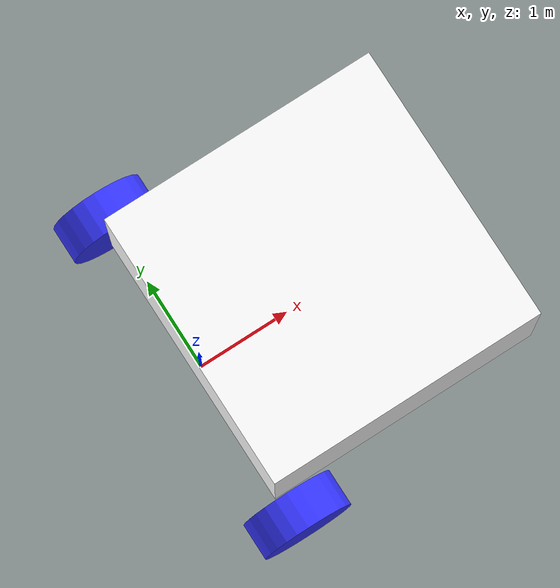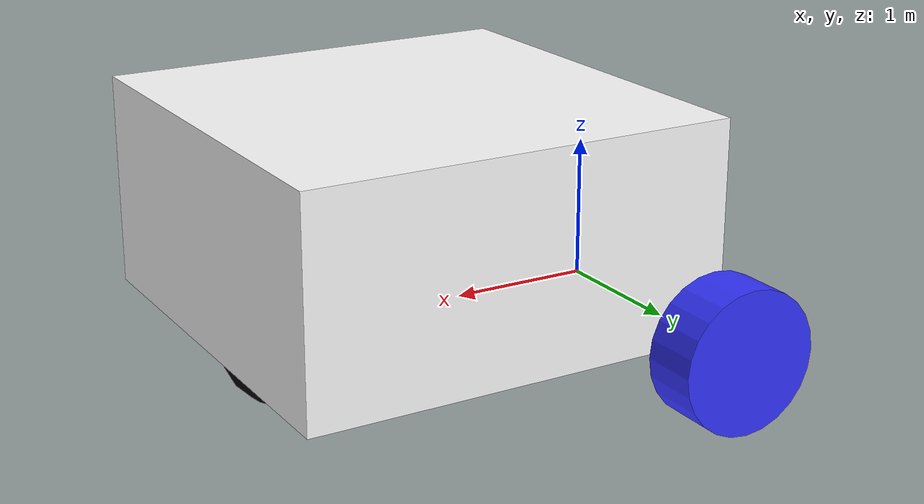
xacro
<?xml version="1.0"?>
<robot xmlns:xacro="http://www.ros.org/wiki/xacro" >

    <xacro:include filename="inertial_macros.xacro"/>

    <material name="white">
        <color rgba="1 1 1 1" />
    </material>

    <material name="orange">
        <color rgba="1 0.3 0.1 1"/>
    </material>

    <material name="blue">
        <color rgba="0.2 0.2 1 1"/>
    </material>

    <material name="black">
        <color rgba="0 0 0 1"/>
    </material>

    <!-- BASE LINK -->

    <link name="base_link" />

    <!-- CHASSIS LINK -->

    <joint name="chassis_joint" type="fixed">
        <parent link="base_link"/>
        <child link="chassis"/>
        <origin xyz="-0.1 0 0"/>
    </joint>

    <link name="chassis">
        <visual>
            <origin xyz="1.5 0 0.75"/>
            <geometry>
                <box size="3 3 1.5"/>
            </geometry>
            <material name="white"/>
        </visual>
        <collision>
            <origin xyz="1.5 0 0.75"/>
            <geometry>
                <box size="3 3 1.5"/>
            </geometry>
        </collision>
        <xacro:inertial_box mass="5" x="3" y="3" z="1.5">
            <origin xyz="1.5 0 0.75" rpy="0 0 0"/>
        </xacro:inertial_box>
    </link>

    <gazebo reference="chassis">
        <material>Gazebo/White</material>
    </gazebo>

    <!-- LEFT WHEEL LINK -->

    <joint name="left_wheel_joint" type="continuous">
        <parent link="base_link"/>
        <child link="left_wheel"/>
        <origin xyz="0 1.75 0" rpy="-${pi/2} 0 0" />
        <axis xyz="0 0 1"/>
    </joint>

    <link name="left_wheel">
        <visual>
            <geometry>
                <cylinder radius="0.5" length="0.4"/>
            </geometry>
            <material name="blue"/>
        </visual>
        <collision>
            <geometry>
                <cylinder radius="0.5" length="0.4"/>
            </geometry>
        </collision>
        <xacro:inertial_cylinder mass="1" length="0.4" radius="0.5">
            <origin xyz="0 0 0" rpy="0 0 0"/>
        </xacro:inertial_cylinder>
    </link>

    <gazebo reference="left_wheel">
        <material>Gazebo/Blue</material>
    </gazebo>

    <!-- RIGHT WHEEL LINK -->

    <joint name="right_wheel_joint" type="continuous">
        <parent link="base_link"/>
        <child link="right_wheel"/>
        <origin xyz="0 -1.75 0" rpy="${pi/2} 0 0" />
        <axis xyz="0 0 -1"/>
    </joint>

    <link name="right_wheel">
        <visual>
            <geometry>
                <cylinder radius="0.5" length="0.4"/>
            </geometry>
            <material name="blue"/>
        </visual>
        <collision>
            <geometry>
                <cylinder radius="0.5" length="0.4"/>
            </geometry>
        </collision>
        <xacro:inertial_cylinder mass="1" length="0.4" radius="0.5">
            <origin xyz="0 0 0" rpy="0 0 0"/>
        </xacro:inertial_cylinder>
    </link>

    <gazebo reference="right_wheel">
        <material>Gazebo/Blue</material>
    </gazebo>

    <!-- CASTER WHEEL LINK -->

    <joint name="caster_wheel_joint" type="fixed">
        <parent link="chassis"/>
        <child link="caster_wheel"/>
        <origin xyz="2.4 0 0"/>
    </joint>

    <link name="caster_wheel">
        <visual>
            <geometry>
                <sphere radius="0.5"/>
            </geometry>
            <material name="black"/>
        </visual>
        <collision>
            <geometry>
                <sphere radius="0.5"/>
            </geometry>
        </collision>
        <xacro:inertial_sphere mass="1" radius="0.5">
            <origin xyz="0 0 0" rpy="0 0 0"/>
        </xacro:inertial_sphere>
    </link>

    <gazebo reference="caster_wheel">
        <material>Gazebo/Black</material>
        <mu1 value="0.001"/>
        <mu2 value="0.001"/>
    </gazebo>

</robot>
